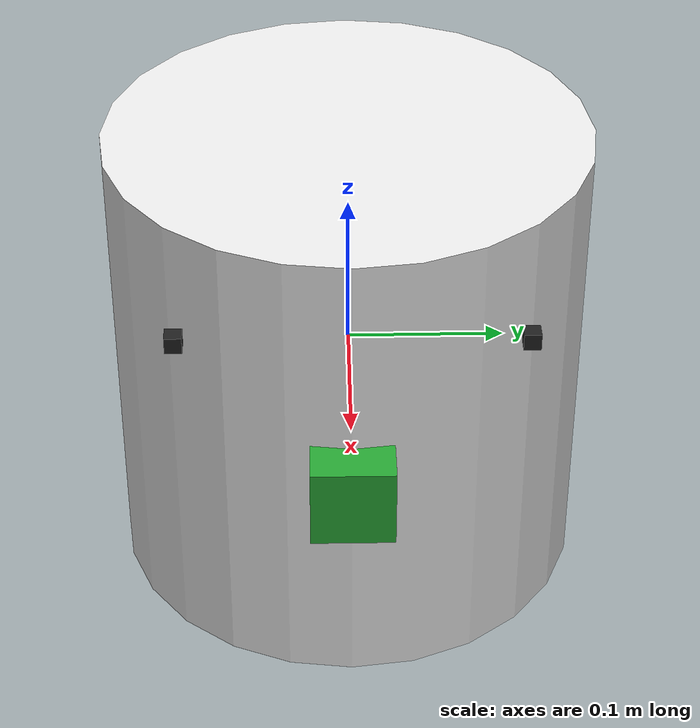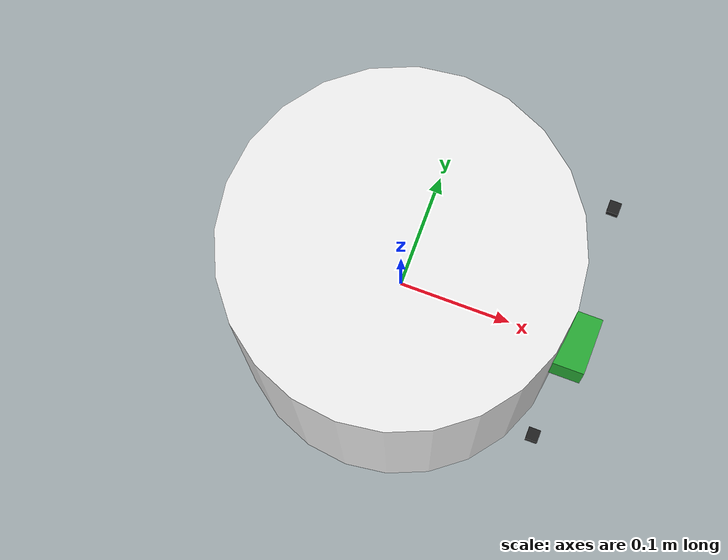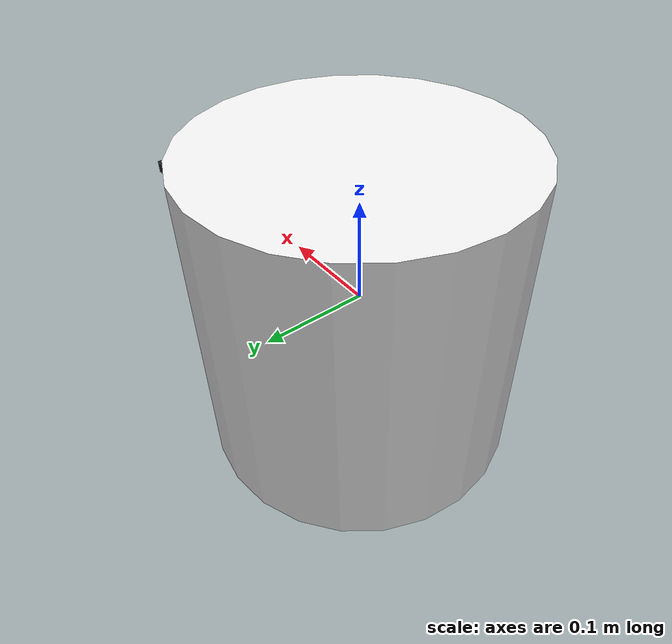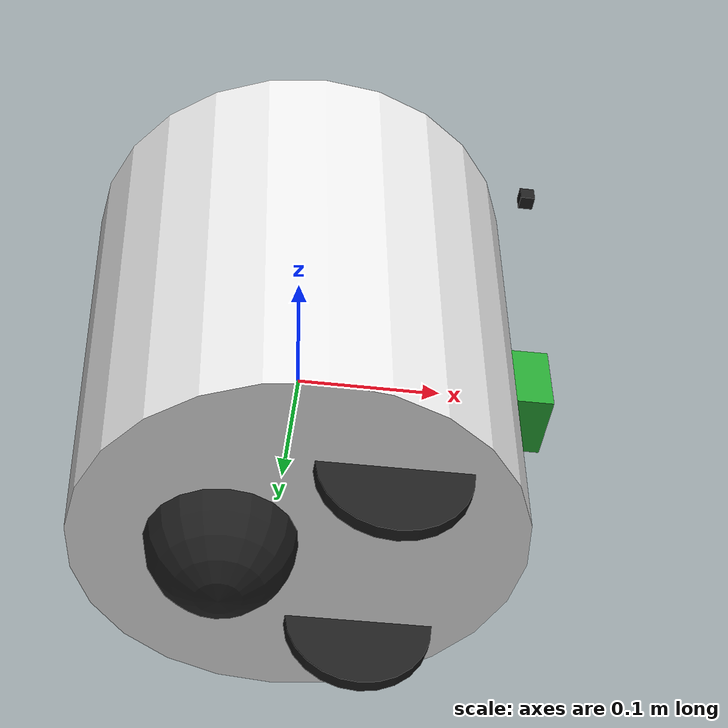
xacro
<?xml version="1.0"?>
<robot name="pr100" xmlns:xacro="http://www.ros.org/wiki/xacro">

    <!-- property variables -->
    <xacro:property name="PI" value="3.1415926535897931"/>

    <xacro:property name="chassisHeight" value="0.3"/>
    <xacro:property name="chassisLength" value="0.3"/>
    <xacro:property name="chassisWidth" value="0.3"/>
    <xacro:property name="chassisMass" value="50"/>

    <xacro:property name="casterRadius" value="0.05"/>
    <xacro:property name="casterMass" value="5"/>

    <xacro:property name="wheelWidth" value="0.01"/>
    <xacro:property name="wheelRadius" value="0.05"/>
    <xacro:property name="wheelPos" value="-0.2"/>
    <xacro:property name="wheelMass" value="5"/>

    <xacro:property name="cameraSize" value="0.05"/>
    <xacro:property name="cameraMass" value="0.1"/>

    <xacro:property name="sonarSize" value="0.1"/>

    <!-- include files -->
    <xacro:include filename="$(find pr100_description)/urdf/pr100.gazebo" />
    <xacro:include filename="$(find pr100_description)/urdf/materials.xacro" />
    <xacro:include filename="$(find pr100_description)/urdf/macros.xacro" />

    <!-- footprint: physic engine does not accept a base_link with inertia, make a joint between it and the chassis -->
    <link name="footprint"/>

    <!-- robot base link: chassis -->
    <link name='chassis'>
        <collision>
            <origin xyz="0 0 -0.15" rpy="0 0 0"/>
            <geometry>
                <mesh filename="package://pr100_description/meshes/cylinder.stl" scale="0.001 0.001 0.001"/>
            </geometry>
        </collision>
        <visual>
            <origin xyz="0 0 -0.15" rpy="0 0 0"/>
            <geometry>
                <mesh filename="package://pr100_description/meshes/cylinder.stl" scale="0.001 0.001 0.001"/>
            </geometry>
            <material name="white"/>
        </visual>
        <inertial>
            <origin xyz="0 0 -0.15" rpy="0 0 0"/>
            <mass value="${chassisMass}"/>
            <xacro:box_inertia m="${chassisMass}" x="${chassisLength}" y="${chassisWidth}" z="${chassisHeight}"/>
        </inertial>
    </link>

    <joint name="base_joint" type="fixed">
        <parent link="footprint"/>
        <child link="chassis"/>
    </joint>

    <!-- caster_wheel -->
    <link name="caster_wheel">
        <collision>
            <origin xyz="${-casterRadius} 0 ${casterRadius-chassisHeight+2*wheelRadius}" rpy="0 0 0"/>
            <geometry>
                <sphere radius="${casterRadius}"/>
            </geometry>
        </collision>

        <visual>
            <origin xyz="${-casterRadius} 0 ${casterRadius-chassisHeight+2*wheelRadius}" rpy="0 0 0"/>
            <geometry>
                <sphere radius="${casterRadius}"/>
            </geometry>
            <material name="black"/>
        </visual>

        <inertial>
            <origin xyz="${-casterRadius} 0 ${casterRadius-chassisHeight+2*wheelRadius}" rpy="0 0 0"/>
            <mass value="${casterMass}"/>
            <xacro:sphere_inertia m="${casterMass}" r="${casterRadius}"/>
        </inertial>
    </link>

    <joint name="fixed_caster_joint" type="fixed">
        <parent link="chassis"/>
        <child link="caster_wheel"/>
    </joint>

    <!-- caster_wheel 2 -->

    <!-- right wheel link -->
    <!-- right wheel joint -->
    <xacro:wheel lr="right" tY="-0.5"/>

    <!-- left wheel link -->
    <!-- left wheel joint -->
    <xacro:wheel lr="left" tY="0.5"/>

    <!-- sensor -->

    <!-- sonar (ultrasonic) -->
    <link name="sonar1">
        <collision>
            <origin xyz="0 0 0" rpy="0 0 0"/>
            <geometry>
                <box size="0.01 0.01 0.01"/>
            </geometry>
        </collision>
        <visual>
            <origin xyz="0 0 0" rpy="0 0 0"/>
            <geometry>
                <box size="0.01 0.01 0.01"/>
            </geometry>
            <material name="black"/>
        </visual>
        <inertial>
            <mass value="1e-5" />
            <origin xyz="0 0 0" rpy="0 0 0"/>
            <inertia ixx="1e-6" ixy="0" ixz="0" iyy="1e-6" iyz="0" izz="1e-6" />
        </inertial>
    </link>

    <joint name="sonar_joint1" type="fixed">
        <axis xyz="0 1 0" />
        <origin xyz="${chassisHeight/2} ${chassisHeight/3} ${chassisHeight/3+chassisHeight*0.01}" rpy="0 0 0"/>
        <parent link="chassis"/>
        <child link="sonar1"/>
    </joint>

    <!-- sonar (ultrasonic) -->
    <link name="sonar2">
        <collision>
            <origin xyz="0 0 0" rpy="0 0 0"/>
            <geometry>
                <box size="0.01 0.01 0.01"/>
            </geometry>
        </collision>
        <visual>
            <origin xyz="0 0 0" rpy="0 0 0"/>
            <geometry>
                <box size="0.01 0.01 0.01"/>
            </geometry>
            <material name="black"/>
        </visual>
        <inertial>
            <mass value="1e-5" />
            <origin xyz="0 0 0" rpy="0 0 0"/>
            <inertia ixx="1e-6" ixy="0" ixz="0" iyy="1e-6" iyz="0" izz="1e-6" />
        </inertial>
    </link>

    <joint name="sonar_joint2" type="fixed">
        <axis xyz="0 1 0" />
        <origin xyz="${chassisHeight/2} ${-chassisHeight/3} ${chassisHeight/3+chassisHeight*0.01}" rpy="0 0 0"/>
        <parent link="chassis"/>
        <child link="sonar2"/>
    </joint>

    <!-- Camera -->
    <link name="camera">
        <collision>
            <origin xyz="0 0 0" rpy="0 0 0"/>
            <geometry>
                <box size="${cameraSize} ${cameraSize} ${cameraSize}"/>
            </geometry>
        </collision>

        <visual>
            <origin xyz="0 0 0" rpy="0 0 0"/>
            <geometry>
                <box size="${cameraSize} ${cameraSize} ${cameraSize}"/>
            </geometry>
            <material name="green"/>
        </visual>

        <inertial>
            <mass value="${cameraMass}" />
            <origin xyz="0 0 0" rpy="0 0 0"/>
            <box_inertia m="${cameraMass}" x="${cameraSize}" y="${cameraSize}" z="${cameraSize}" />
            <inertia ixx="1e-6" ixy="0" ixz="0" iyy="1e-6" iyz="0" izz="1e-6" />
        </inertial>
    </link>

    <joint name="camera_joint" type="fixed">
        <axis xyz="1 0 0" />
        <origin xyz="${chassisWidth/2} 0 0" rpy="0 0 0"/>
        <parent link="chassis"/>
        <child link="camera"/>
    </joint>

</robot>

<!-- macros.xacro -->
<robot xmlns:xacro="http://www.ros.org/wiki/xacro">

<!-- Check that:
 - Your XML is well-formed
 - You have the xacro xmlns declaration: xmlns:xacro="http://www.ros.org/wiki/xacro" -->

    <xacro:macro name="cylinder_inertia" params="m r h">
        <inertia  ixx="${m*(3*r*r+h*h)/12}" ixy = "0" ixz = "0"
            iyy="${m*(3*r*r+h*h)/12}" iyz = "0"
            izz="${m*r*r/2}"
        />
    </xacro:macro>

    <xacro:macro name="box_inertia" params="m x y z">
        <inertia  ixx="${m*(y*y+z*z)/12}" ixy = "0" ixz = "0"
            iyy="${m*(x*x+z*z)/12}" iyz = "0"
            izz="${m*(x*x+z*z)/12}"
        />
    </xacro:macro>

    <xacro:macro name="sphere_inertia" params="m r">
        <inertia  ixx="${2*m*r*r/5}" ixy = "0" ixz = "0"
            iyy="${2*m*r*r/5}" iyz = "0"
            izz="${2*m*r*r/5}"
        />
    </xacro:macro>

    <xacro:macro name="wheel" params="lr tY">

        <link name="${lr}_wheel">
        <collision>
            <origin xyz="0 0 0" rpy="0 ${PI/2} ${PI/2}" />
            <geometry>
            <cylinder length="${wheelWidth}" radius="${wheelRadius}"/>
            </geometry>
        </collision>

        <visual>
            <origin xyz="0 0 0" rpy="0 ${PI/2} ${PI/2}" />
            <geometry>
            <cylinder length="${wheelWidth}" radius="${wheelRadius}"/>
            </geometry>
            <material name="black"/>
        </visual>

        <inertial>
            <origin xyz="0 0 0" rpy="0 ${PI/2} ${PI/2}" />
            <mass value="${wheelMass}"/>
            <xacro:cylinder_inertia m="${wheelMass}" r="${wheelRadius}" h="${wheelWidth}"/>
        </inertial>
        </link>

        <gazebo reference="${lr}_wheel">
            <mu1 value="1.0"/>
            <mu2 value="1.0"/>
            <kp  value="10000000.0" />
            <kd  value="1.0" />
            <fdir1 value="1 0 0"/>
            <material>Gazebo/Black</material>
        </gazebo>

        <joint name="${lr}_wheel_hinge" type="continuous">
            <parent link="chassis"/>
            <child link="${lr}_wheel"/>
            <origin xyz="0.05 ${tY*wheelWidth/2+tY*chassisWidth/2} ${casterRadius+2*wheelRadius-chassisHeight}" rpy="0 0 0" />

            <axis xyz="0 1 0" rpy="0 0 0" />
            <limit effort="100" velocity="100"/>
            <joint_properties damping="0.0" friction="0.0"/>
        </joint>

        <transmission name="${lr}_trans">
            <type>transmission_interface/SimpleTransmission</type>
            <joint name="${lr}_wheel_hinge"/>
            <actuator name="${lr}Motor">
                <hardwareInterface>EffortJointInterface</hardwareInterface>
                <mechanicalReduction>10</mechanicalReduction>
            </actuator>
        </transmission>

    </xacro:macro>

</robot>
